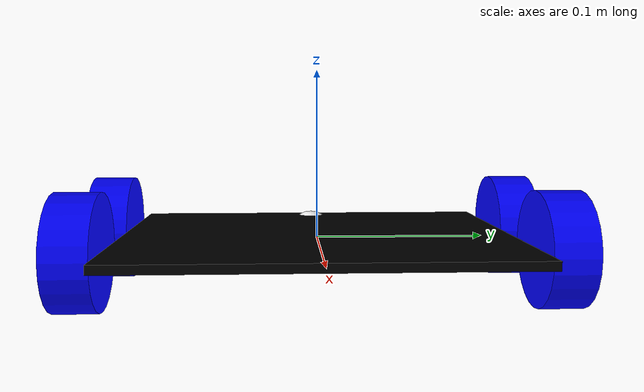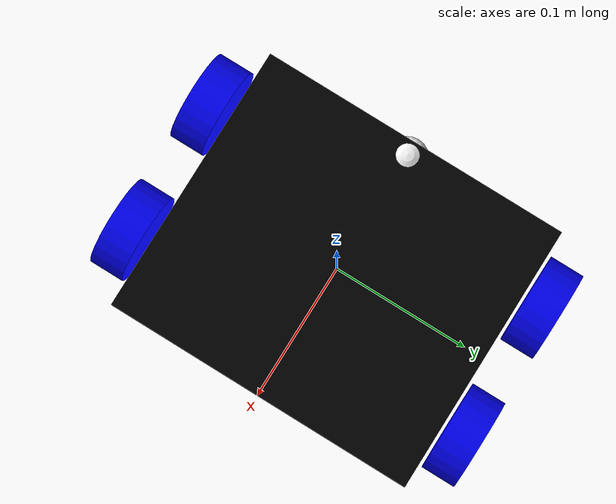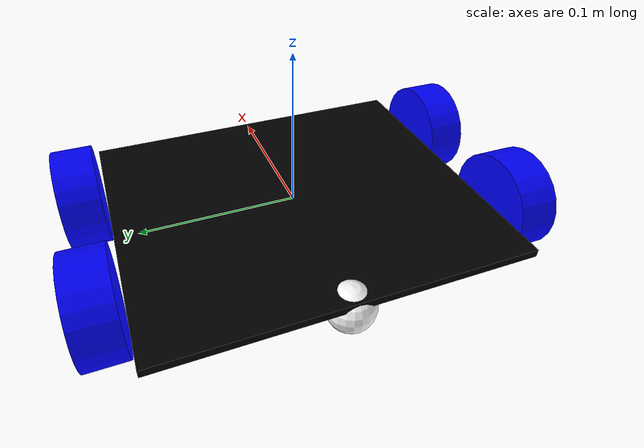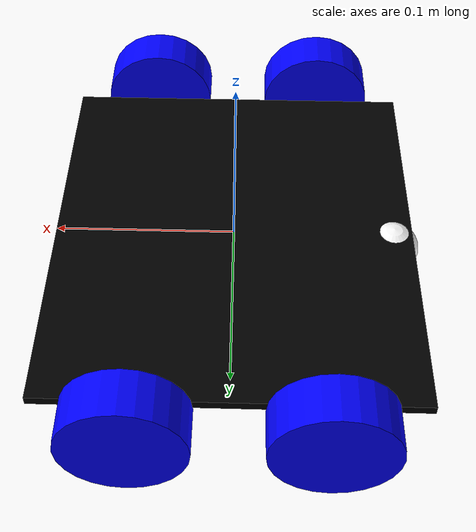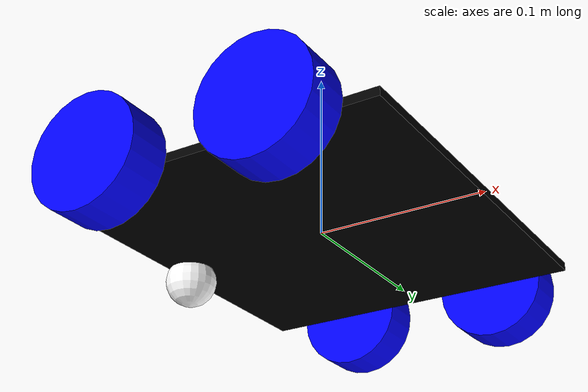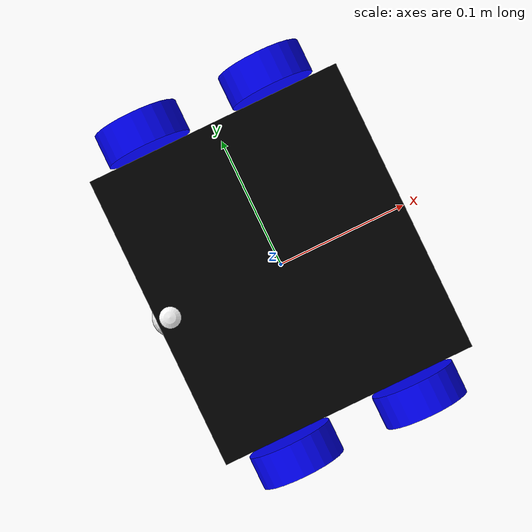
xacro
<?xml version="1.0"?>
<robot xmlns:xacro="http://www.ros.org/wiki/xacro" >
<material name="blue">
        <color rgba="0 0 1 1"/>
    </material>
    <material name="black">
        <color rgba="0 0 0 1"/>
    </material>
    <material name="white">
        <color rgba="1 1 1 1"/>
    </material>

    <!-- Odom link (корень без инерции) -->
    <link name="odom"/>

    <!-- Основная платформа (с инерцией) -->
    <link name="base_link">
        <visual>
            <geometry>
                <box size="0.2 0.23 0.005"/>
            </geometry>
            <material name="black"/>
        </visual>
        <collision>
            <geometry>
                <box size="0.2 0.23 0.005"/>
            </geometry>
        </collision>
        <inertial>
            <mass value="10"/>
            <inertia ixx="1e-3" ixy="0" ixz="0"
                     iyy="1e-3" iyz="0" izz="1e-3"/>
        </inertial>
    </link>

    <joint name="base_link_joint" type="fixed">
        <parent link="odom"/>
        <child link="base_link"/>
        <origin xyz="0 0 0" rpy="0 0 0"/>
    </joint>

    <!-- Промежуточное звено (left_front_base) -->
    <link name="left_front_base">
        <visual>
            <geometry>
                <box size="0.01 0.01 0.01"/>
            </geometry>
        </visual>
    </link>

    <joint name="left_front_base_joint" type="fixed">
        <parent link="base_link"/>
        <child link="left_front_base"/>
        <!-- Joint находится в позиции оси колеса -->
        <origin xyz="0.05 0.13 0"/>
    </joint>

    <!-- Переднее левое колесо -->
    <link name="left_front_wheel">
        <visual>
            <origin rpy="1.57075 0 0" xyz="0 0 0"/>
            <geometry>
                <cylinder length="0.025" radius="0.0325"/>
            </geometry>
            <material name="blue"/>
        </visual>
        <collision>
            <origin rpy="1.57075 0 0" xyz="0 0 0"/>
            <geometry>
                <cylinder length="0.025" radius="0.0325"/>
            </geometry>
        </collision>
        <inertial>
            <mass value="1"/>
            <inertia ixx="1e-3" ixy="0" ixz="0"
                     iyy="1e-3" iyz="0" izz="1e-3"/>
        </inertial>
    </link>

    <joint name="left_front_wheel_joint" type="continuous">
        <axis xyz="0 1 0"/>
        <parent link="left_front_base"/>
        <child link="left_front_wheel"/>
        <!-- Колесо на нулевой позиции относительно промежуточного звена -->
        <origin xyz="0 0 0" rpy="0 0 0"/>
        <command_interface name="velocity"/><!-- управляем скорость колеса -->
        <state_interface name="position"/><!-- состояние: пройденный угол -->
        <state_interface name="velocity"/><!-- состояние: текущая скорость -->
    </joint>

    <!-- Промежуточное звено (right_front_base) -->
    <link name="right_front_base">
        <visual>
            <geometry>
                <box size="0.01 0.01 0.01"/>
            </geometry>
        </visual>
    </link>

    <joint name="right_front_base_joint" type="fixed">
        <parent link="base_link"/>
        <child link="right_front_base"/>
        <!-- Joint находится в позиции оси колеса -->
        <origin xyz="0.05 -0.13 0"/>
    </joint>

    <!-- Переднее правое колесо -->
    <link name="right_front_wheel">
        <visual>
            <origin rpy="1.57075 0 0" xyz="0 0 0"/>
            <geometry>
                <cylinder length="0.025" radius="0.0325"/>
            </geometry>
            <material name="blue"/>
        </visual>
        <collision>
            <origin rpy="1.57075 0 0" xyz="0 0 0"/>
            <geometry>
                <cylinder length="0.025" radius="0.0325"/>
            </geometry>
        </collision>
        <inertial>
            <mass value="1"/>
            <inertia ixx="1e-3" ixy="0" ixz="0"
                     iyy="1e-3" iyz="0" izz="1e-3"/>
        </inertial>
    </link>

    <joint name="right_front_wheel_joint" type="continuous">
        <axis xyz="0 1 0"/>
        <parent link="right_front_base"/>
        <child link="right_front_wheel"/>
        <!-- Колесо на нулевой позиции относительно промежуточного звена -->
        <origin xyz="0 0 0" rpy="0 0 0"/>
        <command_interface name="velocity"/><!-- управляем скорость колеса -->
        <state_interface name="position"/><!-- состояние: пройденный угол -->
        <state_interface name="velocity"/><!-- состояние: текущая скорость -->
    </joint>

    <!-- Промежуточное звено (left_rear_base) -->
    <link name="left_rear_base">
        <visual>
            <geometry>
                <box size="0.01 0.01 0.01"/>
            </geometry>
        </visual>
    </link>

    <joint name="left_rear_base_joint" type="fixed">
        <parent link="base_link"/>
        <child link="left_rear_base"/>
        <!-- Joint находится в позиции оси колеса -->
        <origin xyz="-0.05 0.13 0"/>
    </joint>

    <!-- Заднее левое колесо -->
    <link name="left_rear_wheel">
        <visual>
            <origin rpy="1.57075 0 0" xyz="0 0 0"/>
            <geometry>
                <cylinder length="0.025" radius="0.0325"/>
            </geometry>
            <material name="blue"/>
        </visual>
        <collision>
            <origin rpy="1.57075 0 0" xyz="0 0 0"/>
            <geometry>
                <cylinder length="0.025" radius="0.0325"/>
            </geometry>
        </collision>
        <inertial>
            <mass value="1"/>
            <inertia ixx="1e-3" ixy="0" ixz="0"
                     iyy="1e-3" iyz="0" izz="1e-3"/>
        </inertial>
    </link>

    <joint name="left_rear_wheel_joint" type="continuous">
        <axis xyz="0 1 0"/>
        <parent link="left_rear_base"/>
        <child link="left_rear_wheel"/>
        <!-- Колесо на нулевой позиции относительно промежуточного звена -->
        <origin xyz="0 0 0" rpy="0 0 0"/>
        <command_interface name="velocity"/><!-- управляем скорость колеса -->
        <state_interface name="position"/><!-- состояние: пройденный угол -->
        <state_interface name="velocity"/><!-- состояние: текущая скорость -->
    </joint>

    <!-- Промежуточное звено (right_rear_base) -->
    <link name="right_rear_base">
        <visual>
            <geometry>
                <box size="0.01 0.01 0.01"/>
            </geometry>
        </visual>
    </link>

    <joint name="right_rear_base_joint" type="fixed">
        <parent link="base_link"/>
        <child link="right_rear_base"/>
        <!-- Joint находится в позиции оси колеса -->
        <origin xyz="-0.05 -0.13 0"/>
    </joint>

    <!-- Заднее правое колесо -->
    <link name="right_rear_wheel">
        <visual>
            <origin rpy="1.57075 0 0" xyz="0 0 0"/>
            <geometry>
                <cylinder length="0.025" radius="0.0325"/>
            </geometry>
            <material name="blue"/>
        </visual>
        <collision>
            <origin rpy="1.57075 0 0" xyz="0 0 0"/>
            <geometry>
                <cylinder length="0.025" radius="0.0325"/>
            </geometry>
        </collision>
        <inertial>
            <mass value="1"/>
            <inertia ixx="1e-3" ixy="0" ixz="0"
                     iyy="1e-3" iyz="0" izz="1e-3"/>
        </inertial>
    </link>

    <joint name="right_rear_wheel_joint" type="continuous">
        <axis xyz="0 1 0"/>
        <parent link="right_rear_base"/>
        <child link="right_rear_wheel"/>
        <!-- Колесо на нулевой позиции относительно промежуточного звена -->
        <origin xyz="0 0 0" rpy="0 0 0"/>
        <command_interface name="velocity"/><!-- управляем скорость колеса -->
        <state_interface name="position"/><!-- состояние: пройденный угол -->
        <state_interface name="velocity"/><!-- состояние: текущая скорость -->
    </joint>

    <link name="caster_wheel">
        <visual>
            <origin xyz="0 0 0" rpy="0 0 0"/>
            <geometry>
                <sphere radius="0.015"/>
            </geometry>
            <material name="white"/>
        </visual>
        <collision>
            <origin xyz="0 0 0" rpy="0 0 0"/>
            <geometry>
                <sphere radius="0.015"/>
            </geometry>
        </collision>
        <inertial>
            <mass value="0.1"/>
            <inertia ixx="1e-4" ixy="0" ixz="0"
                     iyy="1e-3" iyz="0" izz="1e-3"/>
        </inertial>
    </link>

    <joint name="caster_wheel_joint" type="fixed">
        <parent link="base_link"/>
        <child link="caster_wheel"/>
        <origin xyz="-0.09 0 -0.01"/>
    </joint>
</robot>
